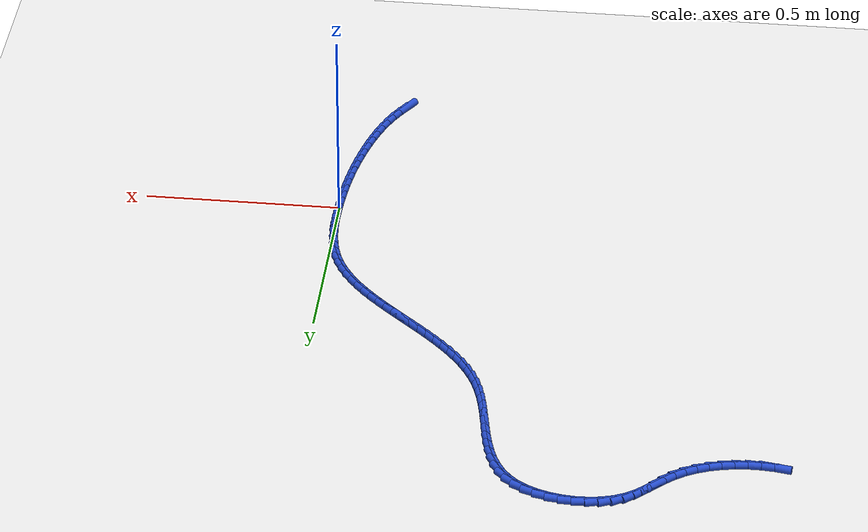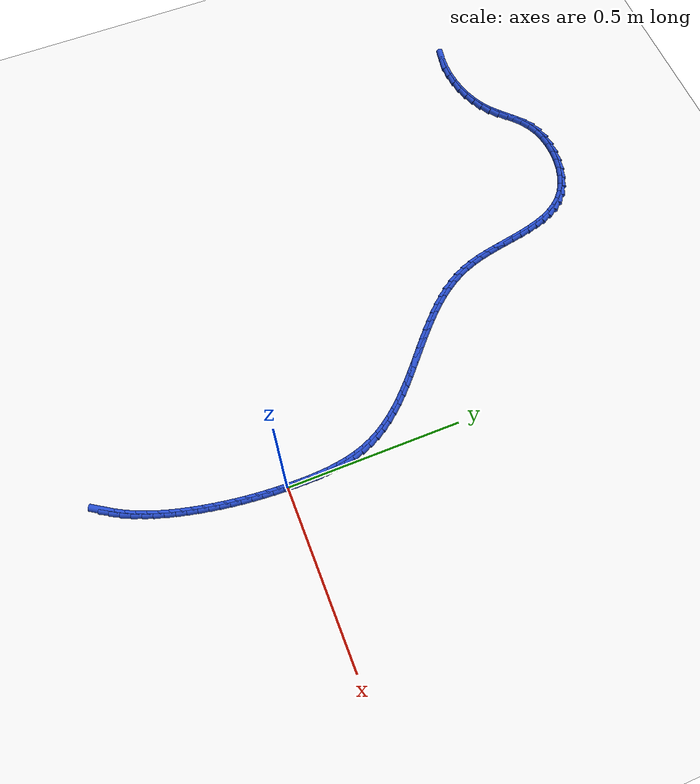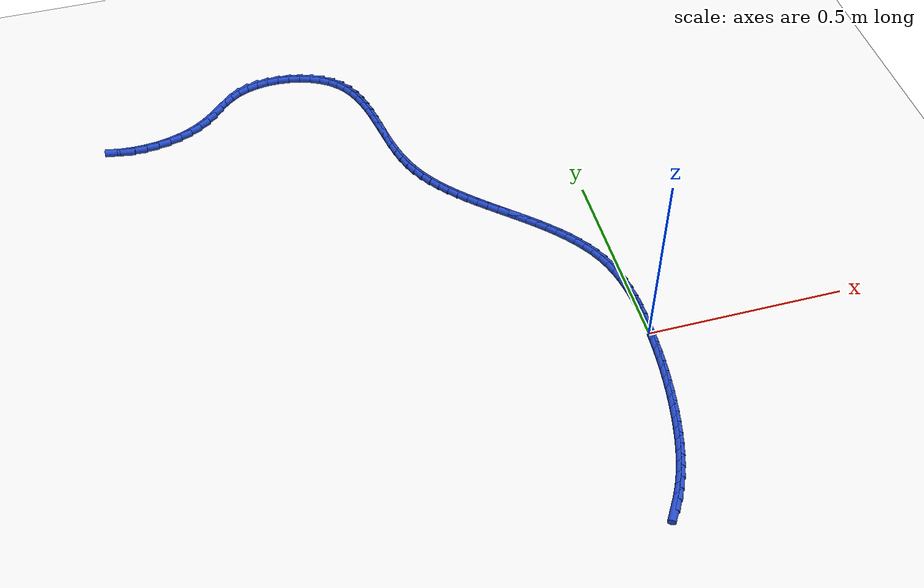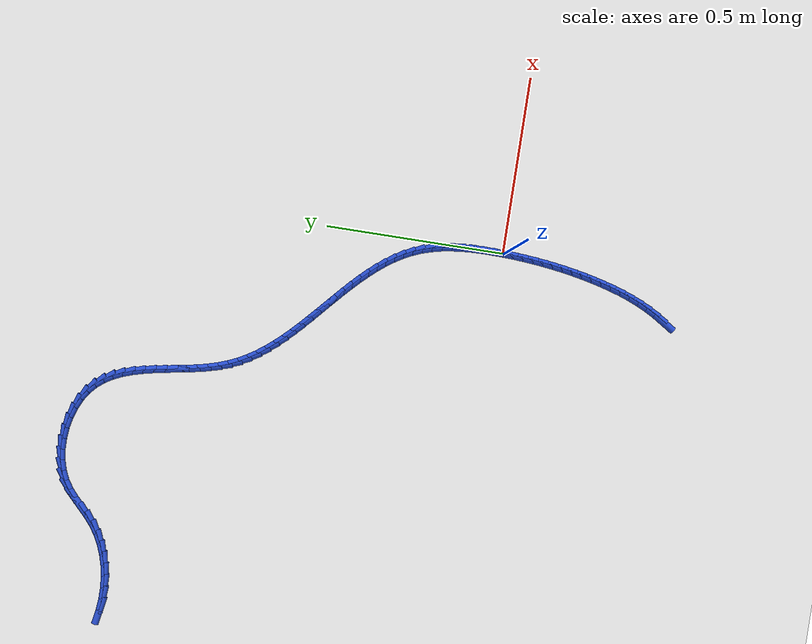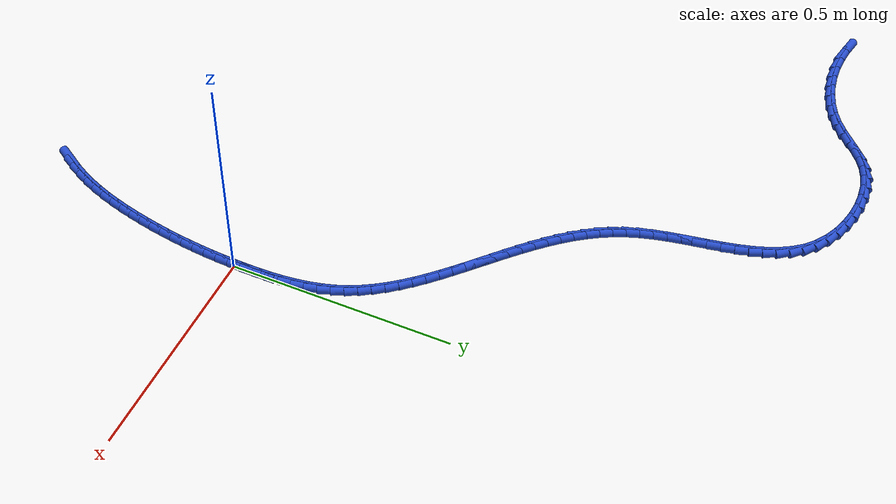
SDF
<sdf version="1.6">
 <world name="default">
  <model name="ground_plane">
   <static>1</static>
   <link name="link">
    <collision name="collision">
     <geometry><plane><normal>0 0 1</normal><size>100 100</size></plane></geometry>
     <surface><friction><ode><mu>100</mu><mu2>50</mu2></ode></friction></surface>
    </collision>
    <visual name="visual">
     <cast_shadows>0</cast_shadows>
     <geometry><plane><normal>0 0 1</normal><size>100 100</size></plane></geometry>
     <material>
      <script><uri>file://media/materials/scripts/gazebo.material</uri><name>Gazebo/WhiteGlow</name></script>
     </material>
    </visual>
   </link>
  </model>
  <model name="line">
   <link name="link_0">
    <pose>5.5294310796760726e-18 0.0 0.01 0 1.57 1.5444436091295004</pose>
    <collision name="collision">
     <geometry><cylinder><radius>0.01</radius><length>0.08</length></cylinder></geometry>
    </collision>
    <visual name="visual">
     <material>
      <script><name>Gazebo/Blue</name><uri>file://media/materials/scripts/gazebo.material</uri></script>
     </material>
     <geometry><cylinder><radius>0.01</radius><length>0.08</length></cylinder></geometry>
    </visual>
   </link>
   <link name="link_1">
    <pose>0.0007724250891138013 0.029304236589794443 0.01 0 1.57 1.5688253961860097</pose>
    <collision name="collision">
     <geometry><cylinder><radius>0.01</radius><length>0.08</length></cylinder></geometry>
    </collision>
    <visual name="visual">
     <material>
      <script><name>Gazebo/Blue</name><uri>file://media/materials/scripts/gazebo.material</uri></script>
     </material>
     <geometry><cylinder><radius>0.01</radius><length>0.08</length></cylinder></geometry>
    </visual>
   </link>
   <link name="link_2">
    <pose>0.0008304526359340504 0.05874589801677482 0.01 0 1.57 -1.541692237862683</pose>
    <collision name="collision">
     <geometry><cylinder><radius>0.01</radius><length>0.08</length></cylinder></geometry>
    </collision>
    <visual name="visual">
     <material>
      <script><name>Gazebo/Blue</name><uri>file://media/materials/scripts/gazebo.material</uri></script>
     </material>
     <geometry><cylinder><radius>0.01</radius><length>0.08</length></cylinder></geometry>
    </visual>
   </link>
   <link name="link_3">
    <pose>-2.5676761053213806e-05 0.08815371276634205 0.01 0 1.57 -1.5034372966438714</pose>
    <collision name="collision">
     <geometry><cylinder><radius>0.01</radius><length>0.08</length></cylinder></geometry>
    </collision>
    <visual name="visual">
     <material>
      <script><name>Gazebo/Blue</name><uri>file://media/materials/scripts/gazebo.material</uri></script>
     </material>
     <geometry><cylinder><radius>0.01</radius><length>0.08</length></cylinder></geometry>
    </visual>
   </link>
   <link name="link_4">
    <pose>-0.0019957225033619525 0.1173564093238969 0.01 0 1.57 -1.457371203074615</pose>
    <collision name="collision">
     <geometry><cylinder><radius>0.01</radius><length>0.08</length></cylinder></geometry>
    </collision>
    <visual name="visual">
     <material>
      <script><name>Gazebo/Blue</name><uri>file://media/materials/scripts/gazebo.material</uri></script>
     </material>
     <geometry><cylinder><radius>0.01</radius><length>0.08</length></cylinder></geometry>
    </visual>
   </link>
   <link name="link_5">
    <pose>-0.005279443992506131 0.14618271617484047 0.01 0 1.57 -1.4027572063622549</pose>
    <collision name="collision">
     <geometry><cylinder><radius>0.01</radius><length>0.08</length></cylinder></geometry>
    </collision>
    <visual name="visual">
     <material>
      <script><name>Gazebo/Blue</name><uri>file://media/materials/scripts/gazebo.material</uri></script>
     </material>
     <geometry><cylinder><radius>0.01</radius><length>0.08</length></cylinder></geometry>
    </visual>
   </link>
   <link name="link_6">
    <pose>-0.01007660062999971 0.1744613618045734 0.01 0 1.57 -1.3388218000715582</pose>
    <collision name="collision">
     <geometry><cylinder><radius>0.01</radius><length>0.08</length></cylinder></geometry>
    </collision>
    <visual name="visual">
     <material>
      <script><name>Gazebo/Blue</name><uri>file://media/materials/scripts/gazebo.material</uri></script>
     </material>
     <geometry><cylinder><radius>0.01</radius><length>0.08</length></cylinder></geometry>
    </visual>
   </link>
   <link name="link_7">
    <pose>-0.016586951817356657 0.2020210746984967 0.01 0 1.57 -1.2648712547799625</pose>
    <collision name="collision">
     <geometry><cylinder><radius>0.01</radius><length>0.08</length></cylinder></geometry>
    </collision>
    <visual name="visual">
     <material>
      <script><name>Gazebo/Blue</name><uri>file://media/materials/scripts/gazebo.material</uri></script>
     </material>
     <geometry><cylinder><radius>0.01</radius><length>0.08</length></cylinder></geometry>
    </visual>
   </link>
   <link name="link_8">
    <pose>-0.025010256956090927 0.22869058334201112 0.01 0 1.57 -1.1810644103449333</pose>
    <collision name="collision">
     <geometry><cylinder><radius>0.01</radius><length>0.08</length></cylinder></geometry>
    </collision>
    <visual name="visual">
     <material>
      <script><name>Gazebo/Blue</name><uri>file://media/materials/scripts/gazebo.material</uri></script>
     </material>
     <geometry><cylinder><radius>0.01</radius><length>0.08</length></cylinder></geometry>
    </visual>
   </link>
   <link name="link_9">
    <pose>-0.03553248622592734 0.2543082224170626 0.01 0 1.57 -1.0969023636849762</pose>
    <collision name="collision">
     <geometry><cylinder><radius>0.01</radius><length>0.08</length></cylinder></geometry>
    </collision>
    <visual name="visual">
     <material>
      <script><name>Gazebo/Blue</name><uri>file://media/materials/scripts/gazebo.material</uri></script>
     </material>
     <geometry><cylinder><radius>0.01</radius><length>0.08</length></cylinder></geometry>
    </visual>
   </link>
   <link name="link_10">
    <pose>-0.04812529734116499 0.27886162637728334 0.01 0 1.57 -1.0207997346557616</pose>
    <collision name="collision">
     <geometry><cylinder><radius>0.01</radius><length>0.08</length></cylinder></geometry>
    </collision>
    <visual name="visual">
     <material>
      <script><name>Gazebo/Blue</name><uri>file://media/materials/scripts/gazebo.material</uri></script>
     </material>
     <geometry><cylinder><radius>0.01</radius><length>0.08</length></cylinder></geometry>
    </visual>
   </link>
   <link name="link_11">
    <pose>-0.06259118820945592 0.30245627406049 0.01 0 1.57 -0.9537348469507666</pose>
    <collision name="collision">
     <geometry><cylinder><radius>0.01</radius><length>0.08</length></cylinder></geometry>
    </collision>
    <visual name="visual">
     <material>
      <script><name>Gazebo/Blue</name><uri>file://media/materials/scripts/gazebo.material</uri></script>
     </material>
     <geometry><cylinder><radius>0.01</radius><length>0.08</length></cylinder></geometry>
    </visual>
   </link>
   <link name="link_12">
    <pose>-0.07872805680326588 0.3252008488277252 0.01 0 1.57 -0.8959668193594053</pose>
    <collision name="collision">
     <geometry><cylinder><radius>0.01</radius><length>0.08</length></cylinder></geometry>
    </collision>
    <visual name="visual">
     <material>
      <script><name>Gazebo/Blue</name><uri>file://media/materials/scripts/gazebo.material</uri></script>
     </material>
     <geometry><cylinder><radius>0.01</radius><length>0.08</length></cylinder></geometry>
    </visual>
   </link>
   <link name="link_13">
    <pose>-0.09633380109506066 0.34720403404003164 0.01 0 1.57 -0.8473905716731159</pose>
    <collision name="collision">
     <geometry><cylinder><radius>0.01</radius><length>0.08</length></cylinder></geometry>
    </collision>
    <visual name="visual">
     <material>
      <script><name>Gazebo/Blue</name><uri>file://media/materials/scripts/gazebo.material</uri></script>
     </material>
     <geometry><cylinder><radius>0.01</radius><length>0.08</length></cylinder></geometry>
    </visual>
   </link>
   <link name="link_14">
    <pose>-0.11520631905730598 0.3685745130584516 0.01 0 1.57 -0.8076893527655452</pose>
    <collision name="collision">
     <geometry><cylinder><radius>0.01</radius><length>0.08</length></cylinder></geometry>
    </collision>
    <visual name="visual">
     <material>
      <script><name>Gazebo/Blue</name><uri>file://media/materials/scripts/gazebo.material</uri></script>
     </material>
     <geometry><cylinder><radius>0.01</radius><length>0.08</length></cylinder></geometry>
    </visual>
   </link>
   <link name="link_15">
    <pose>-0.13514350866246758 0.3894209692440279 0.01 0 1.57 -0.7764574684508303</pose>
    <collision name="collision">
     <geometry><cylinder><radius>0.01</radius><length>0.08</length></cylinder></geometry>
    </collision>
    <visual name="visual">
     <material>
      <script><name>Gazebo/Blue</name><uri>file://media/materials/scripts/gazebo.material</uri></script>
     </material>
     <geometry><cylinder><radius>0.01</radius><length>0.08</length></cylinder></geometry>
    </visual>
   </link>
   <link name="link_16">
    <pose>-0.15594326788301122 0.4098520859578029 0.01 0 1.57 -0.7532876159876892</pose>
    <collision name="collision">
     <geometry><cylinder><radius>0.01</radius><length>0.08</length></cylinder></geometry>
    </collision>
    <visual name="visual">
     <material>
      <script><name>Gazebo/Blue</name><uri>file://media/materials/scripts/gazebo.material</uri></script>
     </material>
     <geometry><cylinder><radius>0.01</radius><length>0.08</length></cylinder></geometry>
    </visual>
   </link>
   <link name="link_17">
    <pose>-0.17740349469140276 0.4299765465608194 0.01 0 1.57 -0.7378274195153731</pose>
    <collision name="collision">
     <geometry><cylinder><radius>0.01</radius><length>0.08</length></cylinder></geometry>
    </collision>
    <visual name="visual">
     <material>
      <script><name>Gazebo/Blue</name><uri>file://media/materials/scripts/gazebo.material</uri></script>
     </material>
     <geometry><cylinder><radius>0.01</radius><length>0.08</length></cylinder></geometry>
    </visual>
   </link>
   <link name="link_18">
    <pose>-0.19932208706010776 0.4499030344141197 0.01 0 1.57 -0.729812941264067</pose>
    <collision name="collision">
     <geometry><cylinder><radius>0.01</radius><length>0.08</length></cylinder></geometry>
    </collision>
    <visual name="visual">
     <material>
      <script><name>Gazebo/Blue</name><uri>file://media/materials/scripts/gazebo.material</uri></script>
     </material>
     <geometry><cylinder><radius>0.01</radius><length>0.08</length></cylinder></geometry>
    </visual>
   </link>
   <link name="link_19">
    <pose>-0.22149694296159214 0.46974023287874656 0.01 0 1.57 -0.7290863556445583</pose>
    <collision name="collision">
     <geometry><cylinder><radius>0.01</radius><length>0.08</length></cylinder></geometry>
    </collision>
    <visual name="visual">
     <material>
      <script><name>Gazebo/Blue</name><uri>file://media/materials/scripts/gazebo.material</uri></script>
     </material>
     <geometry><cylinder><radius>0.01</radius><length>0.08</length></cylinder></geometry>
    </visual>
   </link>
   <link name="link_20">
    <pose>-0.2437259603683215 0.4895968253157424 0.01 0 1.57 -0.7356029198248915</pose>
    <collision name="collision">
     <geometry><cylinder><radius>0.01</radius><length>0.08</length></cylinder></geometry>
    </collision>
    <visual name="visual">
     <material>
      <script><name>Gazebo/Blue</name><uri>file://media/materials/scripts/gazebo.material</uri></script>
     </material>
     <geometry><cylinder><radius>0.01</radius><length>0.08</length></cylinder></geometry>
    </visual>
   </link>
   <link name="link_21">
    <pose>-0.2658070372527618 0.5095814950861499 0.01 0 1.57 -0.7494300069341955</pose>
    <collision name="collision">
     <geometry><cylinder><radius>0.01</radius><length>0.08</length></cylinder></geometry>
    </collision>
    <visual name="visual">
     <material>
      <script><name>Gazebo/Blue</name><uri>file://media/materials/scripts/gazebo.material</uri></script>
     </material>
     <geometry><cylinder><radius>0.01</radius><length>0.08</length></cylinder></geometry>
    </visual>
   </link>
   <link name="link_22">
    <pose>-0.28753807158737854 0.5298029255510115 0.01 0 1.57 -0.7707386786312679</pose>
    <collision name="collision">
     <geometry><cylinder><radius>0.01</radius><length>0.08</length></cylinder></geometry>
    </collision>
    <visual name="visual">
     <material>
      <script><name>Gazebo/Blue</name><uri>file://media/materials/scripts/gazebo.material</uri></script>
     </material>
     <geometry><cylinder><radius>0.01</radius><length>0.08</length></cylinder></geometry>
    </visual>
   </link>
   <link name="link_23">
    <pose>-0.3087169613446378 0.5503698000713702 0.01 0 1.57 -0.7997861076880881</pose>
    <collision name="collision">
     <geometry><cylinder><radius>0.01</radius><length>0.08</length></cylinder></geometry>
    </collision>
    <visual name="visual">
     <material>
      <script><name>Gazebo/Blue</name><uri>file://media/materials/scripts/gazebo.material</uri></script>
     </material>
     <geometry><cylinder><radius>0.01</radius><length>0.08</length></cylinder></geometry>
    </visual>
   </link>
   <link name="link_24">
    <pose>-0.32914160449700497 0.5713908020082679 0.01 0 1.57 -0.8368851310237811</pose>
    <collision name="collision">
     <geometry><cylinder><radius>0.01</radius><length>0.08</length></cylinder></geometry>
    </collision>
    <visual name="visual">
     <material>
      <script><name>Gazebo/Blue</name><uri>file://media/materials/scripts/gazebo.material</uri></script>
     </material>
     <geometry><cylinder><radius>0.01</radius><length>0.08</length></cylinder></geometry>
    </visual>
   </link>
   <link name="link_25">
    <pose>-0.34860989901694606 0.5929746147227476 0.01 0 1.57 -0.8823555700988243</pose>
    <collision name="collision">
     <geometry><cylinder><radius>0.01</radius><length>0.08</length></cylinder></geometry>
    </collision>
    <visual name="visual">
     <material>
      <script><name>Gazebo/Blue</name><uri>file://media/materials/scripts/gazebo.material</uri></script>
     </material>
     <geometry><cylinder><radius>0.01</radius><length>0.08</length></cylinder></geometry>
    </visual>
   </link>
   <link name="link_26">
    <pose>-0.36691974287692675 0.6152299215758517 0.01 0 1.57 -0.9364514772531675</pose>
    <collision name="collision">
     <geometry><cylinder><radius>0.01</radius><length>0.08</length></cylinder></geometry>
    </collision>
    <visual name="visual">
     <material>
      <script><name>Gazebo/Blue</name><uri>file://media/materials/scripts/gazebo.material</uri></script>
     </material>
     <geometry><cylinder><radius>0.01</radius><length>0.08</length></cylinder></geometry>
    </visual>
   </link>
   <link name="link_27">
    <pose>-0.3838690340494128 0.638265405928623 0.01 0 1.57 -0.9992607071051856</pose>
    <collision name="collision">
     <geometry><cylinder><radius>0.01</radius><length>0.08</length></cylinder></geometry>
    </collision>
    <visual name="visual">
     <material>
      <script><name>Gazebo/Blue</name><uri>file://media/materials/scripts/gazebo.material</uri></script>
     </material>
     <geometry><cylinder><radius>0.01</radius><length>0.08</length></cylinder></geometry>
    </visual>
   </link>
   <link name="link_28">
    <pose>-0.3992556705068699 0.6621897511421038 0.01 0 1.57 -1.0704266466682988</pose>
    <collision name="collision">
     <geometry><cylinder><radius>0.01</radius><length>0.08</length></cylinder></geometry>
    </collision>
    <visual name="visual">
     <material>
      <script><name>Gazebo/Blue</name><uri>file://media/materials/scripts/gazebo.material</uri></script>
     </material>
     <geometry><cylinder><radius>0.01</radius><length>0.08</length></cylinder></geometry>
    </visual>
   </link>
   <link name="link_29">
    <pose>-0.4128821858875326 0.6871110186877395 0.01 0 1.57 -1.1453547257778394</pose>
    <collision name="collision">
     <geometry><cylinder><radius>0.01</radius><length>0.08</length></cylinder></geometry>
    </collision>
    <visual name="visual">
     <material>
      <script><name>Gazebo/Blue</name><uri>file://media/materials/scripts/gazebo.material</uri></script>
     </material>
     <geometry><cylinder><radius>0.01</radius><length>0.08</length></cylinder></geometry>
    </visual>
   </link>
   <link name="link_30">
    <pose>-0.42466797528614864 0.7131215926935821 0.01 0 1.57 -1.2186103788120048</pose>
    <collision name="collision">
     <geometry><cylinder><radius>0.01</radius><length>0.08</length></cylinder></geometry>
    </collision>
    <visual name="visual">
     <material>
      <script><name>Gazebo/Blue</name><uri>file://media/materials/scripts/gazebo.material</uri></script>
     </material>
     <geometry><cylinder><radius>0.01</radius><length>0.08</length></cylinder></geometry>
    </visual>
   </link>
   <link name="link_31">
    <pose>-0.4346552848783043 0.7402973764167603 0.01 0 1.57 -1.2864585584660118</pose>
    <collision name="collision">
     <geometry><cylinder><radius>0.01</radius><length>0.08</length></cylinder></geometry>
    </collision>
    <visual name="visual">
     <material>
      <script><name>Gazebo/Blue</name><uri>file://media/materials/scripts/gazebo.material</uri></script>
     </material>
     <geometry><cylinder><radius>0.01</radius><length>0.08</length></cylinder></geometry>
    </visual>
   </link>
   <link name="link_32">
    <pose>-0.44294422884036827 0.7686592407112293 0.01 0 1.57 -1.3381907718266544</pose>
    <collision name="collision">
     <geometry><cylinder><radius>0.01</radius><length>0.08</length></cylinder></geometry>
    </collision>
    <visual name="visual">
     <material>
      <script><name>Gazebo/Blue</name><uri>file://media/materials/scripts/gazebo.material</uri></script>
     </material>
     <geometry><cylinder><radius>0.01</radius><length>0.08</length></cylinder></geometry>
    </visual>
   </link>
   <link name="link_33">
    <pose>-0.44988670191475766 0.7979655520236304 0.01 0 1.57 -1.3721808116540402</pose>
    <collision name="collision">
     <geometry><cylinder><radius>0.01</radius><length>0.08</length></cylinder></geometry>
    </collision>
    <visual name="visual">
     <material>
      <script><name>Gazebo/Blue</name><uri>file://media/materials/scripts/gazebo.material</uri></script>
     </material>
     <geometry><cylinder><radius>0.01</radius><length>0.08</length></cylinder></geometry>
    </visual>
   </link>
   <link name="link_34">
    <pose>-0.4559106513829668 0.8278953850307587 0.01 0 1.57 -1.3897716146046102</pose>
    <collision name="collision">
     <geometry><cylinder><radius>0.01</radius><length>0.08</length></cylinder></geometry>
    </collision>
    <visual name="visual">
     <material>
      <script><name>Gazebo/Blue</name><uri>file://media/materials/scripts/gazebo.material</uri></script>
     </material>
     <geometry><cylinder><radius>0.01</radius><length>0.08</length></cylinder></geometry>
    </visual>
   </link>
   <link name="link_35">
    <pose>-0.46144404059443195 0.8581277976570998 0.01 0 1.57 -1.3916692696389064</pose>
    <collision name="collision">
     <geometry><cylinder><radius>0.01</radius><length>0.08</length></cylinder></geometry>
    </collision>
    <visual name="visual">
     <material>
      <script><name>Gazebo/Blue</name><uri>file://media/materials/scripts/gazebo.material</uri></script>
     </material>
     <geometry><cylinder><radius>0.01</radius><length>0.08</length></cylinder></geometry>
    </visual>
   </link>
   <link name="link_36">
    <pose>-0.4669148328985895 0.8883418478271403 0.01 0 1.57 -1.3778717919321029</pose>
    <collision name="collision">
     <geometry><cylinder><radius>0.01</radius><length>0.08</length></cylinder></geometry>
    </collision>
    <visual name="visual">
     <material>
      <script><name>Gazebo/Blue</name><uri>file://media/materials/scripts/gazebo.material</uri></script>
     </material>
     <geometry><cylinder><radius>0.01</radius><length>0.08</length></cylinder></geometry>
    </visual>
   </link>
   <link name="link_37">
    <pose>-0.47275099164487583 0.9182165934653661 0.01 0 1.57 -1.3476507782210265</pose>
    <collision name="collision">
     <geometry><cylinder><radius>0.01</radius><length>0.08</length></cylinder></geometry>
    </collision>
    <visual name="visual">
     <material>
      <script><name>Gazebo/Blue</name><uri>file://media/materials/scripts/gazebo.material</uri></script>
     </material>
     <geometry><cylinder><radius>0.01</radius><length>0.08</length></cylinder></geometry>
    </visual>
   </link>
   <link name="link_38">
    <pose>-0.47938048018272733 0.9474310924962641 0.01 0 1.57 -1.2995800134300388</pose>
    <collision name="collision">
     <geometry><cylinder><radius>0.01</radius><length>0.08</length></cylinder></geometry>
    </collision>
    <visual name="visual">
     <material>
      <script><name>Gazebo/Blue</name><uri>file://media/materials/scripts/gazebo.material</uri></script>
     </material>
     <geometry><cylinder><radius>0.01</radius><length>0.08</length></cylinder></geometry>
    </visual>
   </link>
   <link name="link_39">
    <pose>-0.48723126186158044 0.9756644028443203 0.01 0 1.57 -1.2316715903046354</pose>
    <collision name="collision">
     <geometry><cylinder><radius>0.01</radius><length>0.08</length></cylinder></geometry>
    </collision>
    <visual name="visual">
     <material>
      <script><name>Gazebo/Blue</name><uri>file://media/materials/scripts/gazebo.material</uri></script>
     </material>
     <geometry><cylinder><radius>0.01</radius><length>0.08</length></cylinder></geometry>
    </visual>
   </link>
   <link name="link_40">
    <pose>-0.49673130003087146 1.0025955824340207 0.01 0 1.57 -1.141762167571544</pose>
    <collision name="collision">
     <geometry><cylinder><radius>0.01</radius><length>0.08</length></cylinder></geometry>
    </collision>
    <visual name="visual">
     <material>
      <script><name>Gazebo/Blue</name><uri>file://media/materials/scripts/gazebo.material</uri></script>
     </material>
     <geometry><cylinder><radius>0.01</radius><length>0.08</length></cylinder></geometry>
    </visual>
   </link>
   <link name="link_41">
    <pose>-0.5083085580400366 1.0279036891898519 0.01 0 1.57 -1.0283655454468543</pose>
    <collision name="collision">
     <geometry><cylinder><radius>0.01</radius><length>0.08</length></cylinder></geometry>
    </collision>
    <visual name="visual">
     <material>
      <script><name>Gazebo/Blue</name><uri>file://media/materials/scripts/gazebo.material</uri></script>
     </material>
     <geometry><cylinder><radius>0.01</radius><length>0.08</length></cylinder></geometry>
    </visual>
   </link>
   <link name="link_42">
    <pose>-0.5223909992385125 1.0512677810363003 0.01 0 1.57 -0.8921293446321586</pose>
    <collision name="collision">
     <geometry><cylinder><radius>0.01</radius><length>0.08</length></cylinder></geometry>
    </collision>
    <visual name="visual">
     <material>
      <script><name>Gazebo/Blue</name><uri>file://media/materials/scripts/gazebo.material</uri></script>
     </material>
     <geometry><cylinder><radius>0.01</radius><length>0.08</length></cylinder></geometry>
    </visual>
   </link>
   <link name="link_43">
    <pose>-0.5394065869757356 1.072366915897852 0.01 0 1.57 -0.7375227879521923</pose>
    <collision name="collision">
     <geometry><cylinder><radius>0.01</radius><length>0.08</length></cylinder></geometry>
    </collision>
    <visual name="visual">
     <material>
      <script><name>Gazebo/Blue</name><uri>file://media/materials/scripts/gazebo.material</uri></script>
     </material>
     <geometry><cylinder><radius>0.01</radius><length>0.08</length></cylinder></geometry>
    </visual>
   </link>
   <link name="link_44">
    <pose>-0.5597831358702835 1.0908801767481944 0.01 0 1.57 -0.5795076866644713</pose>
    <collision name="collision">
     <geometry><cylinder><radius>0.01</radius><length>0.08</length></cylinder></geometry>
    </collision>
    <visual name="visual">
     <material>
      <script><name>Gazebo/Blue</name><uri>file://media/materials/scripts/gazebo.material</uri></script>
     </material>
     <geometry><cylinder><radius>0.01</radius><length>0.08</length></cylinder></geometry>
    </visual>
   </link>
   <link name="link_45">
    <pose>-0.5836946092590553 1.1065294001090693 0.01 0 1.57 -0.4399565210279161</pose>
    <collision name="collision">
     <geometry><cylinder><radius>0.01</radius><length>0.08</length></cylinder></geometry>
    </collision>
    <visual name="visual">
     <material>
      <script><name>Gazebo/Blue</name><uri>file://media/materials/scripts/gazebo.material</uri></script>
     </material>
     <geometry><cylinder><radius>0.01</radius><length>0.08</length></cylinder></geometry>
    </visual>
   </link>
   <link name="link_46">
    <pose>-0.6105410659970562 1.1191667632365165 0.01 0 1.57 -0.3162928248825869</pose>
    <collision name="collision">
     <geometry><cylinder><radius>0.01</radius><length>0.08</length></cylinder></geometry>
    </collision>
    <visual name="visual">
     <material>
      <script><name>Gazebo/Blue</name><uri>file://media/materials/scripts/gazebo.material</uri></script>
     </material>
     <geometry><cylinder><radius>0.01</radius><length>0.08</length></cylinder></geometry>
    </visual>
   </link>
   <link name="link_47">
    <pose>-0.6395756111712234 1.128669193291096 0.01 0 1.57 -0.20210090492745897</pose>
    <collision name="collision">
     <geometry><cylinder><radius>0.01</radius><length>0.08</length></cylinder></geometry>
    </collision>
    <visual name="visual">
     <material>
      <script><name>Gazebo/Blue</name><uri>file://media/materials/scripts/gazebo.material</uri></script>
     </material>
     <geometry><cylinder><radius>0.01</radius><length>0.08</length></cylinder></geometry>
    </visual>
   </link>
   <link name="link_48">
    <pose>-0.6700513498684959 1.1349136174333703 0.01 0 1.57 -0.09160501299704839</pose>
    <collision name="collision">
     <geometry><cylinder><radius>0.01</radius><length>0.08</length></cylinder></geometry>
    </collision>
    <visual name="visual">
     <material>
      <script><name>Gazebo/Blue</name><uri>file://media/materials/scripts/gazebo.material</uri></script>
     </material>
     <geometry><cylinder><radius>0.01</radius><length>0.08</length></cylinder></geometry>
    </visual>
   </link>
   <link name="link_49">
    <pose>-0.7012213871758115 1.1377769628239014 0.01 0 1.57 0.020590241970216902</pose>
    <collision name="collision">
     <geometry><cylinder><radius>0.01</radius><length>0.08</length></cylinder></geometry>
    </collision>
    <visual name="visual">
     <material>
      <script><name>Gazebo/Blue</name><uri>file://media/materials/scripts/gazebo.material</uri></script>
     </material>
     <geometry><cylinder><radius>0.01</radius><length>0.08</length></cylinder></geometry>
    </visual>
   </link>
   <link name="link_50">
    <pose>-0.7323388281801083 1.1371361566232505 0.01 0 1.57 0.1398566497385695</pose>
    <collision name="collision">
     <geometry><cylinder><radius>0.01</radius><length>0.08</length></cylinder></geometry>
    </collision>
    <visual name="visual">
     <material>
      <script><name>Gazebo/Blue</name><uri>file://media/materials/scripts/gazebo.material</uri></script>
     </material>
     <geometry><cylinder><radius>0.01</radius><length>0.08</length></cylinder></geometry>
    </visual>
   </link>
   <link name="link_51">
    <pose>-0.7626567779683251 1.1328681259919802 0.01 0 1.57 0.271792909332439</pose>
    <collision name="collision">
     <geometry><cylinder><radius>0.01</radius><length>0.08</length></cylinder></geometry>
    </collision>
    <visual name="visual">
     <material>
      <script><name>Gazebo/Blue</name><uri>file://media/materials/scripts/gazebo.material</uri></script>
     </material>
     <geometry><cylinder><radius>0.01</radius><length>0.08</length></cylinder></geometry>
    </visual>
   </link>
   <link name="link_52">
    <pose>-0.7914283416273996 1.124849798090652 0.01 0 1.57 0.42211470220724173</pose>
    <collision name="collision">
     <geometry><cylinder><radius>0.01</radius><length>0.08</length></cylinder></geometry>
    </collision>
    <visual name="visual">
     <material>
      <script><name>Gazebo/Blue</name><uri>file://media/materials/scripts/gazebo.material</uri></script>
     </material>
     <geometry><cylinder><radius>0.01</radius><length>0.08</length></cylinder></geometry>
    </visual>
   </link>
   <link name="link_53">
    <pose>-0.8179066242442696 1.1129581000798272 0.01 0 1.57 0.5865241983206736</pose>
    <collision name="collision">
     <geometry><cylinder><radius>0.01</radius><length>0.08</length></cylinder></geometry>
    </collision>
    <visual name="visual">
     <material>
      <script><name>Gazebo/Blue</name><uri>file://media/materials/scripts/gazebo.material</uri></script>
     </material>
     <geometry><cylinder><radius>0.01</radius><length>0.08</length></cylinder></geometry>
    </visual>
   </link>
   <link name="link_54">
    <pose>-0.8415620852240826 1.0972382586843332 0.01 0 1.57 0.7109046088940874</pose>
    <collision name="collision">
     <geometry><cylinder><radius>0.01</radius><length>0.08</length></cylinder></geometry>
    </collision>
    <visual name="visual">
     <material>
      <script><name>Gazebo/Blue</name><uri>file://media/materials/scripts/gazebo.material</uri></script>
     </material>
     <geometry><cylinder><radius>0.01</radius><length>0.08</length></cylinder></geometry>
    </visual>
   </link>
   <link name="link_55">
    <pose>-0.8631001644615963 1.078691758043114 0.01 0 1.57 0.7724084802625105</pose>
    <collision name="collision">
     <geometry><cylinder><radius>0.01</radius><length>0.08</length></cylinder></geometry>
    </collision>
    <visual name="visual">
     <material>
      <script><name>Gazebo/Blue</name><uri>file://media/materials/scripts/gazebo.material</uri></script>
     </material>
     <geometry><cylinder><radius>0.01</radius><length>0.08</length></cylinder></geometry>
    </visual>
   </link>
   <link name="link_56">
    <pose>-0.8836619072056336 1.0586573757608468 0.01 0 1.57 0.7721054160212065</pose>
    <collision name="collision">
     <geometry><cylinder><radius>0.01</radius><length>0.08</length></cylinder></geometry>
    </collision>
    <visual name="visual">
     <material>
      <script><name>Gazebo/Blue</name><uri>file://media/materials/scripts/gazebo.material</uri></script>
     </material>
     <geometry><cylinder><radius>0.01</radius><length>0.08</length></cylinder></geometry>
    </visual>
   </link>
   <link name="link_57">
    <pose>-0.9043888511766754 1.0384742707678076 0.01 0 1.57 0.7114100335788597</pose>
    <collision name="collision">
     <geometry><cylinder><radius>0.01</radius><length>0.08</length></cylinder></geometry>
    </collision>
    <visual name="visual">
     <material>
      <script><name>Gazebo/Blue</name><uri>file://media/materials/scripts/gazebo.material</uri></script>
     </material>
     <geometry><cylinder><radius>0.01</radius><length>0.08</length></cylinder></geometry>
    </visual>
   </link>
   <link name="link_58">
    <pose>-0.926422534095203 1.0194816019942718 0.01 0 1.57 0.6007256662201476</pose>
    <collision name="collision">
     <geometry><cylinder><radius>0.01</radius><length>0.08</length></cylinder></geometry>
    </collision>
    <visual name="visual">
     <material>
      <script><name>Gazebo/Blue</name><uri>file://media/materials/scripts/gazebo.material</uri></script>
     </material>
     <geometry><cylinder><radius>0.01</radius><length>0.08</length></cylinder></geometry>
    </visual>
   </link>
   <link name="link_59">
    <pose>-0.950703667286617 1.0028441052591197 0.01 0 1.57 0.4859199176332965</pose>
    <collision name="collision">
     <geometry><cylinder><radius>0.01</radius><length>0.08</length></cylinder></geometry>
    </collision>
    <visual name="visual">
     <material>
      <script><name>Gazebo/Blue</name><uri>file://media/materials/scripts/gazebo.material</uri></script>
     </material>
     <geometry><cylinder><radius>0.01</radius><length>0.08</length></cylinder></geometry>
    </visual>
   </link>
   <link name="link_60">
    <pose>-0.9771773506624909 0.9888618011605477 0.01 0 1.57 0.37969027912691716</pose>
    <collision name="collision">
     <geometry><cylinder><radius>0.01</radius><length>0.08</length></cylinder></geometry>
    </collision>
    <visual name="visual">
     <material>
      <script><name>Gazebo/Blue</name><uri>file://media/materials/scripts/gazebo.material</uri></script>
     </material>
     <geometry><cylinder><radius>0.01</radius><length>0.08</length></cylinder></geometry>
    </visual>
   </link>
   <link name="link_61">
    <pose>-1.0054807228063756 0.9775672376221484 0.01 0 1.57 0.2804290467314209</pose>
    <collision name="collision">
     <geometry><cylinder><radius>0.01</radius><length>0.08</length></cylinder></geometry>
    </collision>
    <visual name="visual">
     <material>
      <script><name>Gazebo/Blue</name><uri>file://media/materials/scripts/gazebo.material</uri></script>
     </material>
     <geometry><cylinder><radius>0.01</radius><length>0.08</length></cylinder></geometry>
    </visual>
   </link>
   <link name="link_62">
    <pose>-1.0352508312947828 0.9689928835254585 0.01 0 1.57 0.18637471258917898</pose>
    <collision name="collision">
     <geometry><cylinder><radius>0.01</radius><length>0.08</length></cylinder></geometry>
    </collision>
    <visual name="visual">
     <material>
      <script><name>Gazebo/Blue</name><uri>file://media/materials/scripts/gazebo.material</uri></script>
     </material>
     <geometry><cylinder><radius>0.01</radius><length>0.08</length></cylinder></geometry>
    </visual>
   </link>
   <link name="link_63">
    <pose>-1.0661247237042248 0.9631712077520165 0.01 0 1.57 0.09575419328181954</pose>
    <collision name="collision">
     <geometry><cylinder><radius>0.01</radius><length>0.08</length></cylinder></geometry>
    </collision>
    <visual name="visual">
     <material>
      <script><name>Gazebo/Blue</name><uri>file://media/materials/scripts/gazebo.material</uri></script>
     </material>
     <geometry><cylinder><radius>0.01</radius><length>0.08</length></cylinder></geometry>
    </visual>
   </link>
   <link name="link_64">
    <pose>-1.0977394476112134 0.9601346791833598 0.01 0 1.57 0.006842489996285639</pose>
    <collision name="collision">
     <geometry><cylinder><radius>0.01</radius><length>0.08</length></cylinder></geometry>
    </collision>
    <visual name="visual">
     <material>
      <script><name>Gazebo/Blue</name><uri>file://media/materials/scripts/gazebo.material</uri></script>
     </material>
     <geometry><cylinder><radius>0.01</radius><length>0.08</length></cylinder></geometry>
    </visual>
   </link>
   <link name="link_65">
    <pose>-1.129732050592261 0.9599157667010262 0.01 0 1.57 -0.08202037465056664</pose>
    <collision name="collision">
     <geometry><cylinder><radius>0.01</radius><length>0.08</length></cylinder></geometry>
    </collision>
    <visual name="visual">
     <material>
      <script><name>Gazebo/Blue</name><uri>file://media/materials/scripts/gazebo.material</uri></script>
     </material>
     <geometry><cylinder><radius>0.01</radius><length>0.08</length></cylinder></geometry>
    </visual>
   </link>
   <link name="link_66">
    <pose>-1.161739580223879 0.9625469391865531 0.01 0 1.57 -0.17242766429709902</pose>
    <collision name="collision">
     <geometry><cylinder><radius>0.01</radius><length>0.08</length></cylinder></geometry>
    </collision>
    <visual name="visual">
     <material>
      <script><name>Gazebo/Blue</name><uri>file://media/materials/scripts/gazebo.material</uri></script>
     </material>
     <geometry><cylinder><radius>0.01</radius><length>0.08</length></cylinder></geometry>
    </visual>
   </link>
   <link name="link_243">
    <pose>-0.11737330072128195 -0.46892752307035557 0.01 0 1.57 1.0071955320500754</pose>
    <collision name="collision">
     <geometry><cylinder><radius>0.01</radius><length>0.08</length></cylinder></geometry>
    </collision>
    <visual name="visual">
     <material>
      <script><name>Gazebo/Blue</name><uri>file://media/materials/scripts/gazebo.material</uri></script>
     </material>
     <geometry><cylinder><radius>0.01</radius><length>0.08</length></cylinder></geometry>
    </visual>
   </link>
   <link name="link_244">
    <pose>-0.10236770505692691 -0.44518362974454806 0.01 0 1.57 1.072938261955967</pose>
    <collision name="collision">
     <geometry><cylinder><radius>0.01</radius><length>0.08</length></cylinder></geometry>
    </collision>
    <visual name="visual">
     <material>
      <script><name>Gazebo/Blue</name><uri>file://media/materials/scripts/gazebo.material</uri></script>
     </material>
     <geometry><cylinder><radius>0.01</radius><length>0.08</length></cylinder></geometry>
    </visual>
   </link>
   <link name="link_245">
    <pose>-0.08883802445338401 -0.4202911374934457 0.01 0 1.57 1.1315362513847604</pose>
    <collision name="collision">
     <geometry><cylinder><radius>0.01</radius><length>0.08</length></cylinder></geometry>
    </collision>
    <visual name="visual">
     <material>
      <script><name>Gazebo/Blue</name><uri>file://media/materials/scripts/gazebo.material</uri></script>
     </material>
     <geometry><cylinder><radius>0.01</radius><length>0.08</length></cylinder></geometry>
    </visual>
   </link>
   <link name="link_246">
    <pose>-0.07667929274284652 -0.3944147194919935 0.01 0 1.57 1.1833718698535785</pose>
    <collision name="collision">
     <geometry><cylinder><radius>0.01</radius><length>0.08</length></cylinder></geometry>
    </collision>
    <visual name="visual">
     <material>
      <script><name>Gazebo/Blue</name><uri>file://media/materials/scripts/gazebo.material</uri></script>
     </material>
     <geometry><cylinder><radius>0.01</radius><length>0.08</length></cylinder></geometry>
    </visual>
   </link>
   <link name="link_247">
    <pose>-0.0657863073230587 -0.36771932522479034 0.01 0 1.57 1.2289145856616057</pose>
    <collision name="collision">
     <geometry><cylinder><radius>0.01</radius><length>0.08</length></cylinder></geometry>
    </collision>
    <visual name="visual">
     <material>
      <script><name>Gazebo/Blue</name><uri>file://media/materials/scripts/gazebo.material</uri></script>
     </material>
     <geometry><cylinder><radius>0.01</radius><length>0.08</length></cylinder></geometry>
    </visual>
   </link>
   <link name="link_248">
    <pose>-0.056053865591765284 -0.3403699041764357 0.01 0 1.57 1.2686456651608073</pose>
    <collision name="collision">
     <geometry><cylinder><radius>0.01</radius><length>0.08</length></cylinder></geometry>
    </collision>
    <visual name="visual">
     <material>
      <script><name>Gazebo/Blue</name><uri>file://media/materials/scripts/gazebo.material</uri></script>
     </material>
     <geometry><cylinder><radius>0.01</radius><length>0.08</length></cylinder></geometry>
    </visual>
   </link>
   <link name="link_249">
    <pose>-0.04737676494671094 -0.3125314058315289 0.01 0 1.57 1.3030164966115496</pose>
    <collision name="collision">
     <geometry><cylinder><radius>0.01</radius><length>0.08</length></cylinder></geometry>
    </collision>
    <visual name="visual">
     <material>
      <script><name>Gazebo/Blue</name><uri>file://media/materials/scripts/gazebo.material</uri></script>
     </material>
     <geometry><cylinder><radius>0.01</radius><length>0.08</length></cylinder></geometry>
    </visual>
   </link>
   <link name="link_250">
    <pose>-0.03964980278564035 -0.2843687796746694 0.01 0 1.57 1.3324224137509522</pose>
    <collision name="collision">
     <geometry><cylinder><radius>0.01</radius><length>0.08</length></cylinder></geometry>
    </collision>
    <visual name="visual">
     <material>
      <script><name>Gazebo/Blue</name><uri>file://media/materials/scripts/gazebo.material</uri></script>
     </material>
     <geometry><cylinder><radius>0.01</radius><length>0.08</length></cylinder></geometry>
    </visual>
   </link>
   <link name="link_251">
    <pose>-0.0327677765062982 -0.25604697519045655 0.01 0 1.57 1.3572374760267263</pose>
    <collision name="collision">
     <geometry><cylinder><radius>0.01</radius><length>0.08</length></cylinder></geometry>
    </collision>
    <visual name="visual">
     <material>
      <script><name>Gazebo/Blue</name><uri>file://media/materials/scripts/gazebo.material</uri></script>
     </material>
     <geometry><cylinder><radius>0.01</radius><length>0.08</length></cylinder></geometry>
    </visual>
   </link>
   <link name="link_252">
    <pose>-0.0266264658827445 -0.22772849314742766 0.01 0 1.57 1.3795313872707322</pose>
    <collision name="collision">
     <geometry><cylinder><radius>0.01</radius><length>0.08</length></cylinder></geometry>
    </collision>
    <visual name="visual">
     <material>
      <script><name>Gazebo/Blue</name><uri>file://media/materials/scripts/gazebo.material</uri></script>
     </material>
     <geometry><cylinder><radius>0.01</radius><length>0.08</length></cylinder></geometry>
    </visual>
   </link>
   <link name="link_253">
    <pose>-0.02115777697796624 -0.1994857842767385 0.01 0 1.57 1.4016160710369483</pose>
    <collision name="collision">
     <geometry><cylinder><radius>0.01</radius><length>0.08</length></cylinder></geometry>
    </collision>
    <visual name="visual">
     <material>
      <script><name>Gazebo/Blue</name><uri>file://media/materials/scripts/gazebo.material</uri></script>
     </material>
     <geometry><cylinder><radius>0.01</radius><length>0.08</length></cylinder></geometry>
    </visual>
   </link>
   <link name="link_254">
    <pose>-0.01633938508465022 -0.17127721283766764 0.01 0 1.57 1.4235020234161804</pose>
    <collision name="collision">
     <geometry><cylinder><radius>0.01</radius><length>0.08</length></cylinder></geometry>
    </collision>
    <visual name="visual">
     <material>
      <script><name>Gazebo/Blue</name><uri>file://media/materials/scripts/gazebo.material</uri></script>
     </material>
     <geometry><cylinder><radius>0.01</radius><length>0.08</length></cylinder></geometry>
    </visual>
   </link>
   <link name="link_255">
    <pose>-0.012151910364127496 -0.1430538025754432 0.01 0 1.57 1.4450480737417402</pose>
    <collision name="collision">
     <geometry><cylinder><radius>0.01</radius><length>0.08</length></cylinder></geometry>
    </collision>
    <visual name="visual">
     <material>
      <script><name>Gazebo/Blue</name><uri>file://media/materials/scripts/gazebo.material</uri></script>
     </material>
     <geometry><cylinder><radius>0.01</radius><length>0.08</length></cylinder></geometry>
    </visual>
   </link>
   <link name="link_256">
    <pose>-0.008575972977729116 -0.11476657723529314 0.01 0 1.57 1.466117741781967</pose>
    <collision name="collision">
     <geometry><cylinder><radius>0.01</radius><length>0.08</length></cylinder></geometry>
    </collision>
    <visual name="visual">
     <material>
      <script><name>Gazebo/Blue</name><uri>file://media/materials/scripts/gazebo.material</uri></script>
     </material>
     <geometry><cylinder><radius>0.01</radius><length>0.08</length></cylinder></geometry>
    </visual>
   </link>
   <link name="link_257">
    <pose>-0.0055921930867861265 -0.08636656056244575 0.01 0 1.57 1.4865824023995398</pose>
    <collision name="collision">
     <geometry><cylinder><radius>0.01</radius><length>0.08</length></cylinder></geometry>
    </collision>
    <visual name="visual">
     <material>
      <script><name>Gazebo/Blue</name><uri>file://media/materials/scripts/gazebo.material</uri></script>
     </material>
     <geometry><cylinder><radius>0.01</radius><length>0.08</length></cylinder></geometry>
    </visual>
   </link>
   <link name="link_258">
    <pose>-0.0031811908526295785 -0.057804776302129025 0.01 0 1.57 1.5063240677575882</pose>
    <collision name="collision">
     <geometry><cylinder><radius>0.01</radius><length>0.08</length></cylinder></geometry>
    </collision>
    <visual name="visual">
     <material>
      <script><name>Gazebo/Blue</name><uri>file://media/materials/scripts/gazebo.material</uri></script>
     </material>
     <geometry><cylinder><radius>0.01</radius><length>0.08</length></cylinder></geometry>
    </visual>
   </link>
   <link name="link_259">
    <pose>-0.0013235864365905147 -0.029032248199571044 0.01 0 1.57 1.5252376584190763</pose>
    <collision name="collision">
     <geometry><cylinder><radius>0.01</radius><length>0.08</length></cylinder></geometry>
    </collision>
    <visual name="visual">
     <material>
      <script><name>Gazebo/Blue</name><uri>file://media/materials/scripts/gazebo.material</uri></script>
     </material>
     <geometry><cylinder><radius>0.01</radius><length>0.08</length></cylinder></geometry>
    </visual>
   </link>
   <link name="link_260">
    <pose>1.22514845490862e-17 6.938893903907228e-17 0.01 0 1.57 1.5432326804841145</pose>
    <collision name="collision">
     <geometry><cylinder><radius>0.01</radius><length>0.08</length></cylinder></geometry>
    </collision>
    <visual name="visual">
     <material>
      <script><name>Gazebo/Blue</name><uri>file://media/materials/scripts/gazebo.material</uri></script>
     </material>
     <geometry><cylinder><radius>0.01</radius><length>0.08</length></cylinder></geometry>
    </visual>
   </link>
   <link name="link_261">
    <pose>0.0008089482958109578 0.029340944551356236 0.01 0 1.57 1.5602342751282858</pose>
    <collision name="collision">
     <geometry><cylinder><radius>0.01</radius><length>0.08</length></cylinder></geometry>
    </collision>
    <visual name="visual">
     <material>
      <script><name>Gazebo/Blue</name><uri>file://media/materials/scripts/gazebo.material</uri></script>
     </material>
     <geometry><cylinder><radius>0.01</radius><length>0.08</length></cylinder></geometry>
    </visual>
   </link>
   <link name="link_262">
    <pose>0.0011226382895112748 0.0590395617092694 0.01 0 1.57 1.551783600719035</pose>
    <collision name="collision">
     <geometry><cylinder><radius>0.01</radius><length>0.08</length></cylinder></geometry>
    </collision>
    <visual name="visual">
     <material>
      <script><name>Gazebo/Blue</name><uri>file://media/materials/scripts/gazebo.material</uri></script>
     </material>
     <geometry><cylinder><radius>0.01</radius><length>0.08</length></cylinder></geometry>
    </visual>
   </link>
  </model>
 </world>
</sdf>
